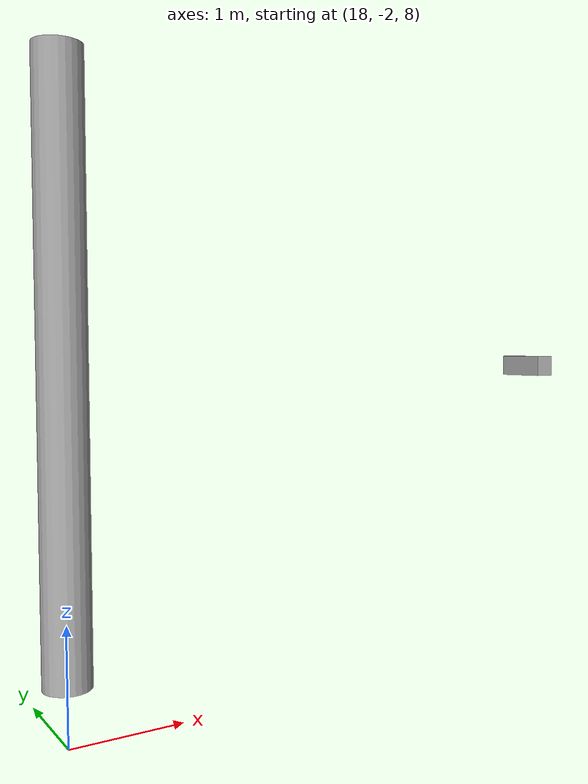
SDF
<?xml version='1.0'?>
<sdf version='1.4'>
  <model name="my_flag">
    <link name='stick'>
       <pose>18 -2 11 0 0 0</pose>
       <collision name="collision">
         <geometry>
           <cylinder>
             <radius>0.2</radius>
             <length>5</length>
           </cylinder>
         </geometry>
       </collision>
       <visual name="visual">
         <geometry>
           <cylinder>
             <radius>0.2</radius>
             <length>5</length>
           </cylinder>
         </geometry>
       </visual>
     </link>

     <link name='flag'>
        <pose>23 -2 11 0 0 0</pose>

        <collision name='collision'>
          <geometry>
            <box>
              <size>4 2 0.2</size>
            </box>
          </geometry>
        </collision>

        <visual name='visual'>
          <geometry>
            <box>
              <size>.2 .5 0.2</size>
            </box>
          </geometry>
        </visual>
    </link>
  </model>
</sdf>
